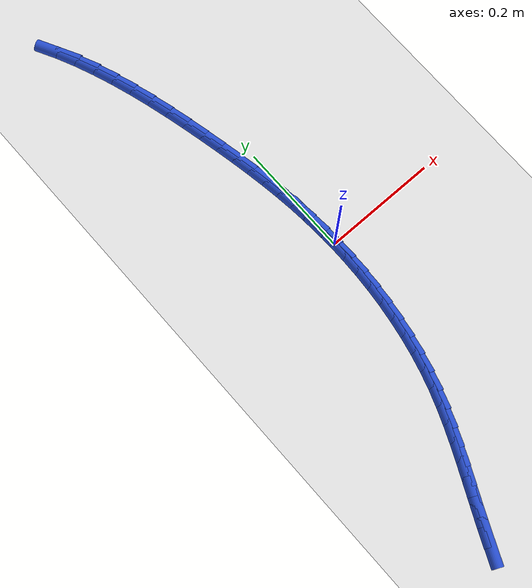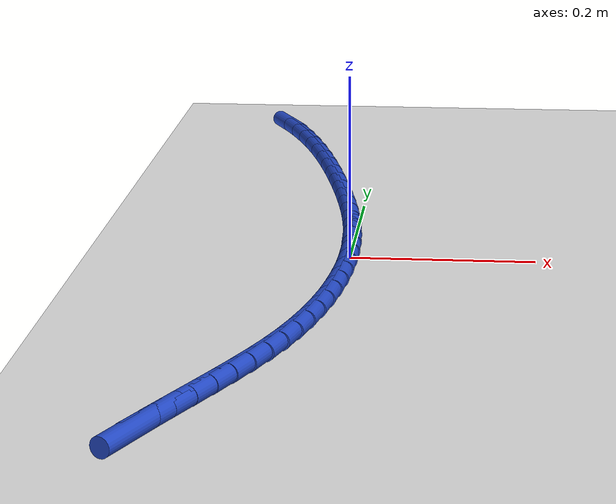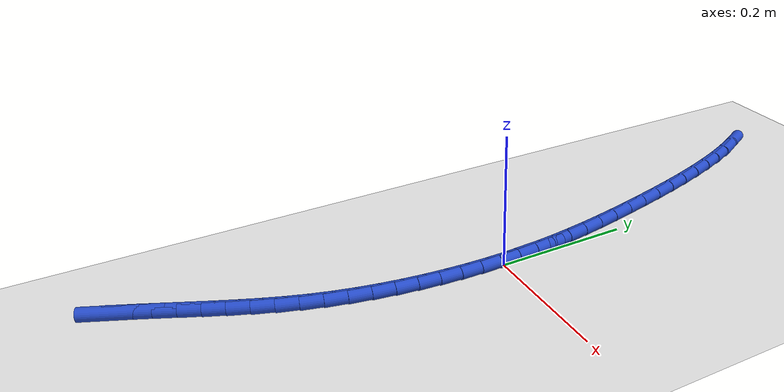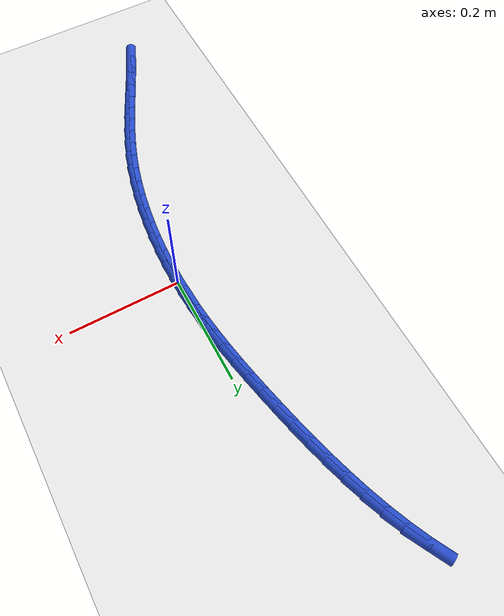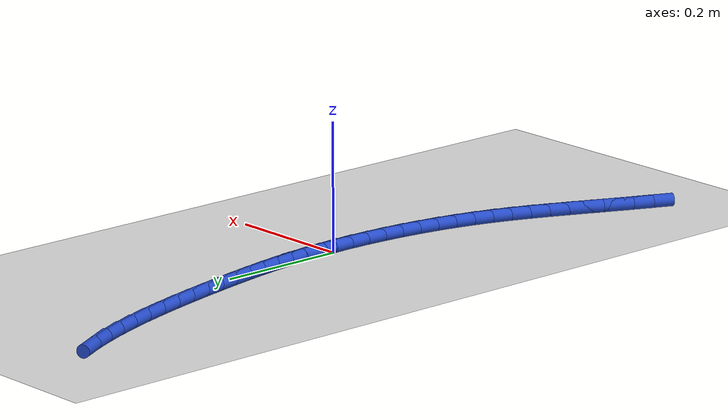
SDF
<sdf version="1.6">
 <world name="default">
  <model name="ground_plane">
   <static>1</static>
   <link name="link">
    <collision name="collision">
     <geometry><plane><normal>0 0 1</normal><size>100 100</size></plane></geometry>
     <surface><friction><ode><mu>100</mu><mu2>50</mu2></ode></friction></surface>
    </collision>
    <visual name="visual">
     <cast_shadows>0</cast_shadows>
     <geometry><plane><normal>0 0 1</normal><size>100 100</size></plane></geometry>
     <material>
      <script><uri>file://media/materials/scripts/gazebo.material</uri><name>Gazebo/WhiteGlow</name></script>
     </material>
    </visual>
   </link>
  </model>
  <model name="line">
   <link name="link_0">
    <pose>6.938893903907228e-18 -6.938893903907228e-18 0.01 0 1.57 -1.5380101871183578</pose>
    <collision name="collision">
     <geometry><cylinder><radius>0.01</radius><length>0.08</length></cylinder></geometry>
    </collision>
    <visual name="visual">
     <material>
      <script><name>Gazebo/Blue</name><uri>file://media/materials/scripts/gazebo.material</uri></script>
     </material>
     <geometry><cylinder><radius>0.01</radius><length>0.08</length></cylinder></geometry>
    </visual>
   </link>
   <link name="link_1">
    <pose>-0.0010125075892012242 0.030871117529211917 0.01 0 1.57 -1.5060558207727262</pose>
    <collision name="collision">
     <geometry><cylinder><radius>0.01</radius><length>0.08</length></cylinder></geometry>
    </collision>
    <visual name="visual">
     <material>
      <script><name>Gazebo/Blue</name><uri>file://media/materials/scripts/gazebo.material</uri></script>
     </material>
     <geometry><cylinder><radius>0.01</radius><length>0.08</length></cylinder></geometry>
    </visual>
   </link>
   <link name="link_2">
    <pose>-0.0029968179573395164 0.06147849786982165 0.01 0 1.57 -1.4758701963952163</pose>
    <collision name="collision">
     <geometry><cylinder><radius>0.01</radius><length>0.08</length></cylinder></geometry>
    </collision>
    <visual name="visual">
     <material>
      <script><name>Gazebo/Blue</name><uri>file://media/materials/scripts/gazebo.material</uri></script>
     </material>
     <geometry><cylinder><radius>0.01</radius><length>0.08</length></cylinder></geometry>
    </visual>
   </link>
   <link name="link_3">
    <pose>-0.0059008885439470575 0.0919795042695828 0.01 0 1.57 -1.447963121507701</pose>
    <collision name="collision">
     <geometry><cylinder><radius>0.01</radius><length>0.08</length></cylinder></geometry>
    </collision>
    <visual name="visual">
     <material>
      <script><name>Gazebo/Blue</name><uri>file://media/materials/scripts/gazebo.material</uri></script>
     </material>
     <geometry><cylinder><radius>0.01</radius><length>0.08</length></cylinder></geometry>
    </visual>
   </link>
   <link name="link_4">
    <pose>-0.009672676788556017 0.12253149997624882 0.01 0 1.57 -1.422751854103964</pose>
    <collision name="collision">
     <geometry><cylinder><radius>0.01</radius><length>0.08</length></cylinder></geometry>
    </collision>
    <visual name="visual">
     <material>
      <script><name>Gazebo/Blue</name><uri>file://media/materials/scripts/gazebo.material</uri></script>
     </material>
     <geometry><cylinder><radius>0.01</radius><length>0.08</length></cylinder></geometry>
    </visual>
   </link>
   <link name="link_5">
    <pose>-0.014260140130698585 0.15329184823757327 0.01 0 1.57 -1.4005437216413172</pose>
    <collision name="collision">
     <geometry><cylinder><radius>0.01</radius><length>0.08</length></cylinder></geometry>
    </collision>
    <visual name="visual">
     <material>
      <script><name>Gazebo/Blue</name><uri>file://media/materials/scripts/gazebo.material</uri></script>
     </material>
     <geometry><cylinder><radius>0.01</radius><length>0.08</length></cylinder></geometry>
    </visual>
   </link>
   <link name="link_6">
    <pose>-0.019611236009906934 0.1844179123013097 0.01 0 1.57 -1.3815298972913754</pose>
    <collision name="collision">
     <geometry><cylinder><radius>0.01</radius><length>0.08</length></cylinder></geometry>
    </collision>
    <visual name="visual">
     <material>
      <script><name>Gazebo/Blue</name><uri>file://media/materials/scripts/gazebo.material</uri></script>
     </material>
     <geometry><cylinder><radius>0.01</radius><length>0.08</length></cylinder></geometry>
    </visual>
   </link>
   <link name="link_7">
    <pose>-0.025673921865713246 0.21606705541521157 0.01 0 1.57 -1.3657892270168523</pose>
    <collision name="collision">
     <geometry><cylinder><radius>0.01</radius><length>0.08</length></cylinder></geometry>
    </collision>
    <visual name="visual">
     <material>
      <script><name>Gazebo/Blue</name><uri>file://media/materials/scripts/gazebo.material</uri></script>
     </material>
     <geometry><cylinder><radius>0.01</radius><length>0.08</length></cylinder></geometry>
    </visual>
   </link>
   <link name="link_8">
    <pose>-0.03239615513764969 0.24839664082703242 0.01 0 1.57 -1.3532494051064559</pose>
    <collision name="collision">
     <geometry><cylinder><radius>0.01</radius><length>0.08</length></cylinder></geometry>
    </collision>
    <visual name="visual">
     <material>
      <script><name>Gazebo/Blue</name><uri>file://media/materials/scripts/gazebo.material</uri></script>
     </material>
     <geometry><cylinder><radius>0.01</radius><length>0.08</length></cylinder></geometry>
    </visual>
   </link>
   <link name="link_9">
    <pose>-0.039726936273303745 0.2815608309301771 0.01 0 1.57 -1.3411788114251808</pose>
    <collision name="collision">
     <geometry><cylinder><radius>0.01</radius><length>0.08</length></cylinder></geometry>
    </collision>
    <visual name="visual">
     <material>
      <script><name>Gazebo/Blue</name><uri>file://media/materials/scripts/gazebo.material</uri></script>
     </material>
     <geometry><cylinder><radius>0.01</radius><length>0.08</length></cylinder></geometry>
    </visual>
   </link>
   <link name="link_10">
    <pose>-0.04767034051203258 0.31554477083593147 0.01 0 1.57 -1.3256382477929396</pose>
    <collision name="collision">
     <geometry><cylinder><radius>0.01</radius><length>0.08</length></cylinder></geometry>
    </collision>
    <visual name="visual">
     <material>
      <script><name>Gazebo/Blue</name><uri>file://media/materials/scripts/gazebo.material</uri></script>
     </material>
     <geometry><cylinder><radius>0.01</radius><length>0.08</length></cylinder></geometry>
    </visual>
   </link>
   <link name="link_11">
    <pose>-0.056311752077725735 0.35008407909114053 0.01 0 1.57 -1.306212257859742</pose>
    <collision name="collision">
     <geometry><cylinder><radius>0.01</radius><length>0.08</length></cylinder></geometry>
    </collision>
    <visual name="visual">
     <material>
      <script><name>Gazebo/Blue</name><uri>file://media/materials/scripts/gazebo.material</uri></script>
     </material>
     <geometry><cylinder><radius>0.01</radius><length>0.08</length></cylinder></geometry>
    </visual>
   </link>
   <link name="link_12">
    <pose>-0.06574309594004357 0.3848943015553517 0.01 0 1.57 -1.2826596968596824</pose>
    <collision name="collision">
     <geometry><cylinder><radius>0.01</radius><length>0.08</length></cylinder></geometry>
    </collision>
    <visual name="visual">
     <material>
      <script><name>Gazebo/Blue</name><uri>file://media/materials/scripts/gazebo.material</uri></script>
     </material>
     <geometry><cylinder><radius>0.01</radius><length>0.08</length></cylinder></geometry>
    </visual>
   </link>
   <link name="link_13">
    <pose>-0.07605629706864636 0.41969098408811173 0.01 0 1.57 -1.2546017478848197</pose>
    <collision name="collision">
     <geometry><cylinder><radius>0.01</radius><length>0.08</length></cylinder></geometry>
    </collision>
    <visual name="visual">
     <material>
      <script><name>Gazebo/Blue</name><uri>file://media/materials/scripts/gazebo.material</uri></script>
     </material>
     <geometry><cylinder><radius>0.01</radius><length>0.08</length></cylinder></geometry>
    </visual>
   </link>
   <link name="link_14">
    <pose>-0.08734328043319446 0.45418967254896797 0.01 0 1.57 -1.2215172980234217</pose>
    <collision name="collision">
     <geometry><cylinder><radius>0.01</radius><length>0.08</length></cylinder></geometry>
    </collision>
    <visual name="visual">
     <material>
      <script><name>Gazebo/Blue</name><uri>file://media/materials/scripts/gazebo.material</uri></script>
     </material>
     <geometry><cylinder><radius>0.01</radius><length>0.08</length></cylinder></geometry>
    </visual>
   </link>
   <link name="link_15">
    <pose>-0.0996959710033482 0.48810591279746757 0.01 0 1.57 -1.182733230390341</pose>
    <collision name="collision">
     <geometry><cylinder><radius>0.01</radius><length>0.08</length></cylinder></geometry>
    </collision>
    <visual name="visual">
     <material>
      <script><name>Gazebo/Blue</name><uri>file://media/materials/scripts/gazebo.material</uri></script>
     </material>
     <geometry><cylinder><radius>0.01</radius><length>0.08</length></cylinder></geometry>
    </visual>
   </link>
   <link name="link_16">
    <pose>-0.11320629374876791 0.5211552506931577 0.01 0 1.57 -1.137413754325257</pose>
    <collision name="collision">
     <geometry><cylinder><radius>0.01</radius><length>0.08</length></cylinder></geometry>
    </collision>
    <visual name="visual">
     <material>
      <script><name>Gazebo/Blue</name><uri>file://media/materials/scripts/gazebo.material</uri></script>
     </material>
     <geometry><cylinder><radius>0.01</radius><length>0.08</length></cylinder></geometry>
    </visual>
   </link>
   <link name="link_17">
    <pose>-0.12796617363911383 0.5530532320955854 0.01 0 1.57 -1.084555518454577</pose>
    <collision name="collision">
     <geometry><cylinder><radius>0.01</radius><length>0.08</length></cylinder></geometry>
    </collision>
    <visual name="visual">
     <material>
      <script><name>Gazebo/Blue</name><uri>file://media/materials/scripts/gazebo.material</uri></script>
     </material>
     <geometry><cylinder><radius>0.01</radius><length>0.08</length></cylinder></geometry>
    </visual>
   </link>
   <link name="link_213">
    <pose>-0.14164839623247844 -0.5105571468608942 0.01 0 1.57 1.1476011894851632</pose>
    <collision name="collision">
     <geometry><cylinder><radius>0.01</radius><length>0.08</length></cylinder></geometry>
    </collision>
    <visual name="visual">
     <material>
      <script><name>Gazebo/Blue</name><uri>file://media/materials/scripts/gazebo.material</uri></script>
     </material>
     <geometry><cylinder><radius>0.01</radius><length>0.08</length></cylinder></geometry>
    </visual>
   </link>
   <link name="link_214">
    <pose>-0.1281966229911442 -0.4806915528309961 0.01 0 1.57 1.1341108398873117</pose>
    <collision name="collision">
     <geometry><cylinder><radius>0.01</radius><length>0.08</length></cylinder></geometry>
    </collision>
    <visual name="visual">
     <material>
      <script><name>Gazebo/Blue</name><uri>file://media/materials/scripts/gazebo.material</uri></script>
     </material>
     <geometry><cylinder><radius>0.01</radius><length>0.08</length></cylinder></geometry>
    </visual>
   </link>
   <link name="link_215">
    <pose>-0.1145828207455894 -0.451523559110435 0.01 0 1.57 1.1284013077708335</pose>
    <collision name="collision">
     <geometry><cylinder><radius>0.01</radius><length>0.08</length></cylinder></geometry>
    </collision>
    <visual name="visual">
     <material>
      <script><name>Gazebo/Blue</name><uri>file://media/materials/scripts/gazebo.material</uri></script>
     </material>
     <geometry><cylinder><radius>0.01</radius><length>0.08</length></cylinder></geometry>
    </visual>
   </link>
   <link name="link_216">
    <pose>-0.10100319246237191 -0.4228569959010011 0.01 0 1.57 1.130874188579158</pose>
    <collision name="collision">
     <geometry><cylinder><radius>0.01</radius><length>0.08</length></cylinder></geometry>
    </collision>
    <visual name="visual">
     <material>
      <script><name>Gazebo/Blue</name><uri>file://media/materials/scripts/gazebo.material</uri></script>
     </material>
     <geometry><cylinder><radius>0.01</radius><length>0.08</length></cylinder></geometry>
    </visual>
   </link>
   <link name="link_217">
    <pose>-0.08765394110804842 -0.39449569340448226 0.01 0 1.57 1.1418024095242887</pose>
    <collision name="collision">
     <geometry><cylinder><radius>0.01</radius><length>0.08</length></cylinder></geometry>
    </collision>
    <visual name="visual">
     <material>
      <script><name>Gazebo/Blue</name><uri>file://media/materials/scripts/gazebo.material</uri></script>
     </material>
     <geometry><cylinder><radius>0.01</radius><length>0.08</length></cylinder></geometry>
    </visual>
   </link>
   <link name="link_218">
    <pose>-0.07473126964917609 -0.36624348182266764 0.01 0 1.57 1.1613084612359652</pose>
    <collision name="collision">
     <geometry><cylinder><radius>0.01</radius><length>0.08</length></cylinder></geometry>
    </collision>
    <visual name="visual">
     <material>
      <script><name>Gazebo/Blue</name><uri>file://media/materials/scripts/gazebo.material</uri></script>
     </material>
     <geometry><cylinder><radius>0.01</radius><length>0.08</length></cylinder></geometry>
    </visual>
   </link>
   <link name="link_219">
    <pose>-0.062431381052311656 -0.33790419135734484 0.01 0 1.57 1.189329925734179</pose>
    <collision name="collision">
     <geometry><cylinder><radius>0.01</radius><length>0.08</length></cylinder></geometry>
    </collision>
    <visual name="visual">
     <material>
      <script><name>Gazebo/Blue</name><uri>file://media/materials/scripts/gazebo.material</uri></script>
     </material>
     <geometry><cylinder><radius>0.01</radius><length>0.08</length></cylinder></geometry>
    </visual>
   </link>
   <link name="link_220">
    <pose>-0.05095047828401289 -0.3092816522103043 0.01 0 1.57 1.2255751210526185</pose>
    <collision name="collision">
     <geometry><cylinder><radius>0.01</radius><length>0.08</length></cylinder></geometry>
    </collision>
    <visual name="visual">
     <material>
      <script><name>Gazebo/Blue</name><uri>file://media/materials/scripts/gazebo.material</uri></script>
     </material>
     <geometry><cylinder><radius>0.01</radius><length>0.08</length></cylinder></geometry>
    </visual>
   </link>
   <link name="link_221">
    <pose>-0.040484764310836585 -0.28017969458333425 0.01 0 1.57 1.269019944756935</pose>
    <collision name="collision">
     <geometry><cylinder><radius>0.01</radius><length>0.08</length></cylinder></geometry>
    </collision>
    <visual name="visual">
     <material>
      <script><name>Gazebo/Blue</name><uri>file://media/materials/scripts/gazebo.material</uri></script>
     </material>
     <geometry><cylinder><radius>0.01</radius><length>0.08</length></cylinder></geometry>
    </visual>
   </link>
   <link name="link_222">
    <pose>-0.031220180559619462 -0.2504171845933135 0.01 0 1.57 1.313456414664586</pose>
    <collision name="collision">
     <geometry><cylinder><radius>0.01</radius><length>0.08</length></cylinder></geometry>
    </collision>
    <visual name="visual">
     <material>
      <script><name>Gazebo/Blue</name><uri>file://media/materials/scripts/gazebo.material</uri></script>
     </material>
     <geometry><cylinder><radius>0.01</radius><length>0.08</length></cylinder></geometry>
    </visual>
   </link>
   <link name="link_223">
    <pose>-0.023215105729085535 -0.21999990205631614 0.01 0 1.57 1.3552677681677983</pose>
    <collision name="collision">
     <geometry><cylinder><radius>0.01</radius><length>0.08</length></cylinder></geometry>
    </collision>
    <visual name="visual">
     <material>
      <script><name>Gazebo/Blue</name><uri>file://media/materials/scripts/gazebo.material</uri></script>
     </material>
     <geometry><cylinder><radius>0.01</radius><length>0.08</length></cylinder></geometry>
    </visual>
   </link>
   <link name="link_224">
    <pose>-0.01644151366702238 -0.18906023312991022 0.01 0 1.57 1.394779992080021</pose>
    <collision name="collision">
     <geometry><cylinder><radius>0.01</radius><length>0.08</length></cylinder></geometry>
    </collision>
    <visual name="visual">
     <material>
      <script><name>Gazebo/Blue</name><uri>file://media/materials/scripts/gazebo.material</uri></script>
     </material>
     <geometry><cylinder><radius>0.01</radius><length>0.08</length></cylinder></geometry>
    </visual>
   </link>
   <link name="link_225">
    <pose>-0.010869741883563277 -0.15773296164634723 0.01 0 1.57 1.4323712328392522</pose>
    <collision name="collision">
     <geometry><cylinder><radius>0.01</radius><length>0.08</length></cylinder></geometry>
    </collision>
    <visual name="visual">
     <material>
      <script><name>Gazebo/Blue</name><uri>file://media/materials/scripts/gazebo.material</uri></script>
     </material>
     <geometry><cylinder><radius>0.01</radius><length>0.08</length></cylinder></geometry>
    </visual>
   </link>
   <link name="link_226">
    <pose>-0.006470127888841693 -0.1261528714378793 0.01 0 1.57 1.4684013935799693</pose>
    <collision name="collision">
     <geometry><cylinder><radius>0.01</radius><length>0.08</length></cylinder></geometry>
    </collision>
    <visual name="visual">
     <material>
      <script><name>Gazebo/Blue</name><uri>file://media/materials/scripts/gazebo.material</uri></script>
     </material>
     <geometry><cylinder><radius>0.01</radius><length>0.08</length></cylinder></geometry>
    </visual>
   </link>
   <link name="link_227">
    <pose>-0.003213009192991099 -0.09445474633675857 0.01 0 1.57 1.5032165428773359</pose>
    <collision name="collision">
     <geometry><cylinder><radius>0.01</radius><length>0.08</length></cylinder></geometry>
    </collision>
    <visual name="visual">
     <material>
      <script><name>Gazebo/Blue</name><uri>file://media/materials/scripts/gazebo.material</uri></script>
     </material>
     <geometry><cylinder><radius>0.01</radius><length>0.08</length></cylinder></geometry>
    </visual>
   </link>
   <link name="link_228">
    <pose>-0.0010687233061449255 -0.06277337017523632 0.01 0 1.57 1.5371546998658037</pose>
    <collision name="collision">
     <geometry><cylinder><radius>0.01</radius><length>0.08</length></cylinder></geometry>
    </collision>
    <visual name="visual">
     <material>
      <script><name>Gazebo/Blue</name><uri>file://media/materials/scripts/gazebo.material</uri></script>
     </material>
     <geometry><cylinder><radius>0.01</radius><length>0.08</length></cylinder></geometry>
    </visual>
   </link>
   <link name="link_229">
    <pose>-7.60773843675247e-06 -0.031243526785566304 0.01 0 1.57 1.5705528287308457</pose>
    <collision name="collision">
     <geometry><cylinder><radius>0.01</radius><length>0.08</length></cylinder></geometry>
    </collision>
    <visual name="visual">
     <material>
      <script><name>Gazebo/Blue</name><uri>file://media/materials/scripts/gazebo.material</uri></script>
     </material>
     <geometry><cylinder><radius>0.01</radius><length>0.08</length></cylinder></geometry>
    </visual>
   </link>
   <link name="link_230">
    <pose>1.6479873021779667e-17 1.734723475976807e-16 0.01 0 1.57 -1.537837545759144</pose>
    <collision name="collision">
     <geometry><cylinder><radius>0.01</radius><length>0.08</length></cylinder></geometry>
    </collision>
    <visual name="visual">
     <material>
      <script><name>Gazebo/Blue</name><uri>file://media/materials/scripts/gazebo.material</uri></script>
     </material>
     <geometry><cylinder><radius>0.01</radius><length>0.08</length></cylinder></geometry>
    </visual>
   </link>
   <link name="link_231">
    <pose>-0.0010162376009680875 0.03082242634921096 0.01 0 1.57 -1.5044699026102664</pose>
    <collision name="collision">
     <geometry><cylinder><radius>0.01</radius><length>0.08</length></cylinder></geometry>
    </collision>
    <visual name="visual">
     <material>
      <script><name>Gazebo/Blue</name><uri>file://media/materials/scripts/gazebo.material</uri></script>
     </material>
     <geometry><cylinder><radius>0.01</radius><length>0.08</length></cylinder></geometry>
    </visual>
   </link>
   <link name="link_232">
    <pose>-0.0030266580514745414 0.06108896842981397 0.01 0 1.57 -1.5212917232245913</pose>
    <collision name="collision">
     <geometry><cylinder><radius>0.01</radius><length>0.08</length></cylinder></geometry>
    </collision>
    <visual name="visual">
     <material>
      <script><name>Gazebo/Blue</name><uri>file://media/materials/scripts/gazebo.material</uri></script>
     </material>
     <geometry><cylinder><radius>0.01</radius><length>0.08</length></cylinder></geometry>
    </visual>
   </link>
  </model>
 </world>
</sdf>
